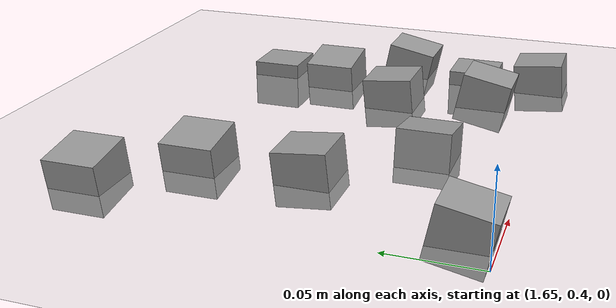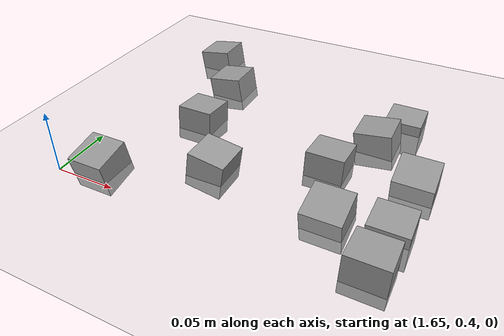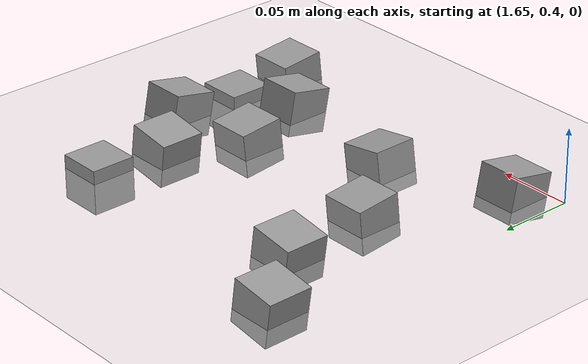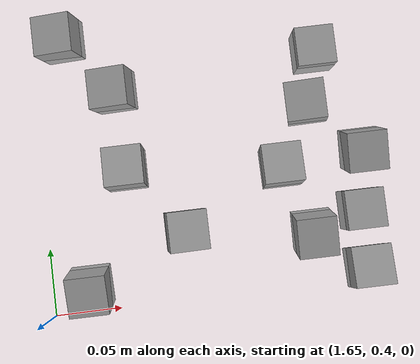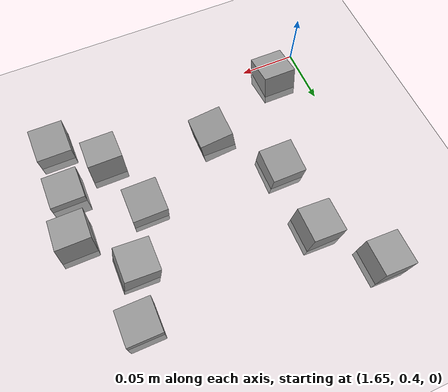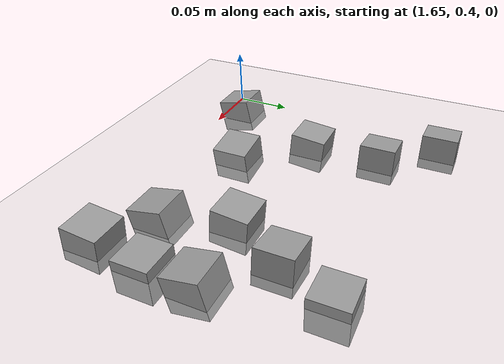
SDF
<sdf version="1.7">
 <world name="default">
  <model name="ground_plane">
   <static>1</static>
   <link name="link">
    <collision name="collision">
     <geometry><plane><normal>0 0 1</normal><size>100 100</size></plane></geometry>
     <surface><friction><ode><mu>100</mu><mu2>50</mu2></ode></friction></surface>
    </collision>
    <visual name="visual">
     <cast_shadows>0</cast_shadows>
     <geometry><plane><normal>0 0 1</normal><size>100 100</size></plane></geometry>
     <material>
      <script><uri>file://media/materials/scripts/gazebo.material</uri><name>Gazebo/Grey</name></script>
     </material>
    </visual>
   </link>
  </model>
  <model name="stone_road_0">
   <link name="link_0_clone_12">
    <inertial>
     <mass>1</mass>
     <inertia>
      <ixx>0.166667</ixx>
      <ixy>0</ixy>
      <ixz>0</ixz>
      <iyy>0.166667</iyy>
      <iyz>0</iyz>
      <izz>0.166667</izz>
     </inertia>
    </inertial>
    <pose>0.142624 -0.262715 0.003778 0.2 -0 0</pose>
    <kinematic>1</kinematic>
    <visual name="visual">
     <geometry><box><size>0.03 0.03 0.03</size></box></geometry>
     <material>
      <lighting>1</lighting>
      <script><uri>file://media/materials/scripts/gazebo.material</uri><name>Gazebo/Grey</name></script>
      <shader type="pixel"><normal_map>__default__</normal_map></shader>
      <ambient>0.3 0.3 0.3 1</ambient>
      <diffuse>0.7 0.7 0.7 1</diffuse>
      <specular>0.01 0.01 0.01 1</specular>
      <emissive>0 0 0 1</emissive>
     </material>
    </visual>
    <collision name="collision">
     <geometry><box><size>0.03 0.03 0.03</size></box></geometry>
     <surface>
      <friction>
       <ode><mu>1</mu><mu2>1</mu2><fdir1>0 0 0</fdir1><slip1>0</slip1><slip2>0</slip2></ode>
       <torsional>
        <coefficient>1</coefficient>
        <patch_radius>0</patch_radius>
        <surface_radius>0</surface_radius>
        <use_patch_radius>1</use_patch_radius>
        <ode><slip>0</slip></ode>
       </torsional>
      </friction>
      <bounce><restitution_coefficient>0</restitution_coefficient><threshold>1e+06</threshold></bounce>
      <contact>
       <collide_without_contact>0</collide_without_contact>
       <collide_without_contact_bitmask>1</collide_without_contact_bitmask>
       <collide_bitmask>1</collide_bitmask>
       <ode>
        <soft_cfm>0</soft_cfm>
        <soft_erp>0.2</soft_erp>
        <kp>1e+13</kp>
        <kd>1</kd>
        <max_vel>0.01</max_vel>
        <min_depth>0</min_depth>
       </ode>
       <bullet>
        <split_impulse>1</split_impulse>
        <split_impulse_penetration_threshold>-0.01</split_impulse_penetration_threshold>
        <soft_cfm>0</soft_cfm>
        <soft_erp>0.2</soft_erp>
        <kp>1e+13</kp>
        <kd>1</kd>
       </bullet>
      </contact>
     </surface>
    </collision>
   </link>
   <link name="link_0_clone_2_clone_2_clone_13_clone_clone_11">
    <inertial>
     <mass>1</mass>
     <inertia>
      <ixx>0.166667</ixx>
      <ixy>0</ixy>
      <ixz>0</ixz>
      <iyy>0.166667</iyy>
      <iyz>0</iyz>
      <izz>0.166667</izz>
     </inertia>
    </inertial>
    <pose>0.178889 -0.173779 0.003778 -0.1 0 0</pose>
    <kinematic>1</kinematic>
    <visual name="visual">
     <geometry><box><size>0.03 0.03 0.03</size></box></geometry>
     <material>
      <lighting>1</lighting>
      <script><uri>file://media/materials/scripts/gazebo.material</uri><name>Gazebo/Grey</name></script>
      <shader type="pixel"><normal_map>__default__</normal_map></shader>
      <ambient>0.3 0.3 0.3 1</ambient>
      <diffuse>0.7 0.7 0.7 1</diffuse>
      <specular>0.01 0.01 0.01 1</specular>
      <emissive>0 0 0 1</emissive>
     </material>
    </visual>
    <collision name="collision">
     <geometry><box><size>0.03 0.03 0.03</size></box></geometry>
     <surface>
      <friction>
       <ode><mu>1</mu><mu2>1</mu2><fdir1>0 0 0</fdir1><slip1>0</slip1><slip2>0</slip2></ode>
       <torsional>
        <coefficient>1</coefficient>
        <patch_radius>0</patch_radius>
        <surface_radius>0</surface_radius>
        <use_patch_radius>1</use_patch_radius>
        <ode><slip>0</slip></ode>
       </torsional>
      </friction>
      <bounce><restitution_coefficient>0</restitution_coefficient><threshold>1e+06</threshold></bounce>
      <contact>
       <collide_without_contact>0</collide_without_contact>
       <collide_without_contact_bitmask>1</collide_without_contact_bitmask>
       <collide_bitmask>1</collide_bitmask>
       <ode>
        <soft_cfm>0</soft_cfm>
        <soft_erp>0.2</soft_erp>
        <kp>1e+13</kp>
        <kd>1</kd>
        <max_vel>0.01</max_vel>
        <min_depth>0</min_depth>
       </ode>
       <bullet>
        <split_impulse>1</split_impulse>
        <split_impulse_penetration_threshold>-0.01</split_impulse_penetration_threshold>
        <soft_cfm>0</soft_cfm>
        <soft_erp>0.2</soft_erp>
        <kp>1e+13</kp>
        <kd>1</kd>
       </bullet>
      </contact>
     </surface>
    </collision>
   </link>
   <link name="link_0_clone_2_clone_2_clone_5">
    <inertial>
     <mass>1</mass>
     <inertia>
      <ixx>0.166667</ixx>
      <ixy>0</ixy>
      <ixz>0</ixz>
      <iyy>0.166667</iyy>
      <iyz>0</iyz>
      <izz>0.166667</izz>
     </inertia>
    </inertial>
    <pose>0.13842 -0.067468 0.003778 0 -0.15 0</pose>
    <kinematic>1</kinematic>
    <visual name="visual">
     <geometry><box><size>0.03 0.03 0.03</size></box></geometry>
     <material>
      <lighting>1</lighting>
      <script><uri>file://media/materials/scripts/gazebo.material</uri><name>Gazebo/Grey</name></script>
      <shader type="pixel"><normal_map>__default__</normal_map></shader>
      <ambient>0.3 0.3 0.3 1</ambient>
      <diffuse>0.7 0.7 0.7 1</diffuse>
      <specular>0.01 0.01 0.01 1</specular>
      <emissive>0 0 0 1</emissive>
     </material>
    </visual>
    <collision name="collision">
     <geometry><box><size>0.03 0.03 0.03</size></box></geometry>
     <surface>
      <friction>
       <ode><mu>1</mu><mu2>1</mu2><fdir1>0 0 0</fdir1><slip1>0</slip1><slip2>0</slip2></ode>
       <torsional>
        <coefficient>1</coefficient>
        <patch_radius>0</patch_radius>
        <surface_radius>0</surface_radius>
        <use_patch_radius>1</use_patch_radius>
        <ode><slip>0</slip></ode>
       </torsional>
      </friction>
      <bounce><restitution_coefficient>0</restitution_coefficient><threshold>1e+06</threshold></bounce>
      <contact>
       <collide_without_contact>0</collide_without_contact>
       <collide_without_contact_bitmask>1</collide_without_contact_bitmask>
       <collide_bitmask>1</collide_bitmask>
       <ode>
        <soft_cfm>0</soft_cfm>
        <soft_erp>0.2</soft_erp>
        <kp>1e+13</kp>
        <kd>1</kd>
        <max_vel>0.01</max_vel>
        <min_depth>0</min_depth>
       </ode>
       <bullet>
        <split_impulse>1</split_impulse>
        <split_impulse_penetration_threshold>-0.01</split_impulse_penetration_threshold>
        <soft_cfm>0</soft_cfm>
        <soft_erp>0.2</soft_erp>
        <kp>1e+13</kp>
        <kd>1</kd>
       </bullet>
      </contact>
     </surface>
    </collision>
   </link>
   <link name="link_0_clone_2_clone_2_clone_7">
    <inertial>
     <mass>1</mass>
     <inertia>
      <ixx>0.166667</ixx>
      <ixy>0</ixy>
      <ixz>0</ixz>
      <iyy>0.166667</iyy>
      <iyz>0</iyz>
      <izz>0.166667</izz>
     </inertia>
    </inertial>
    <pose>0.175499 -0.112442 0.003778 0 -0.15 0</pose>
    <kinematic>1</kinematic>
    <visual name="visual">
     <geometry><box><size>0.03 0.03 0.03</size></box></geometry>
     <material>
      <lighting>1</lighting>
      <script><uri>file://media/materials/scripts/gazebo.material</uri><name>Gazebo/Grey</name></script>
      <shader type="pixel"><normal_map>__default__</normal_map></shader>
      <ambient>0.3 0.3 0.3 1</ambient>
      <diffuse>0.7 0.7 0.7 1</diffuse>
      <specular>0.01 0.01 0.01 1</specular>
      <emissive>0 0 0 1</emissive>
     </material>
    </visual>
    <collision name="collision">
     <geometry><box><size>0.03 0.03 0.03</size></box></geometry>
     <surface>
      <friction>
       <ode><mu>1</mu><mu2>1</mu2><fdir1>0 0 0</fdir1><slip1>0</slip1><slip2>0</slip2></ode>
       <torsional>
        <coefficient>1</coefficient>
        <patch_radius>0</patch_radius>
        <surface_radius>0</surface_radius>
        <use_patch_radius>1</use_patch_radius>
        <ode><slip>0</slip></ode>
       </torsional>
      </friction>
      <bounce><restitution_coefficient>0</restitution_coefficient><threshold>1e+06</threshold></bounce>
      <contact>
       <collide_without_contact>0</collide_without_contact>
       <collide_without_contact_bitmask>1</collide_without_contact_bitmask>
       <collide_bitmask>1</collide_bitmask>
       <ode>
        <soft_cfm>0</soft_cfm>
        <soft_erp>0.2</soft_erp>
        <kp>1e+13</kp>
        <kd>1</kd>
        <max_vel>0.01</max_vel>
        <min_depth>0</min_depth>
       </ode>
       <bullet>
        <split_impulse>1</split_impulse>
        <split_impulse_penetration_threshold>-0.01</split_impulse_penetration_threshold>
        <soft_cfm>0</soft_cfm>
        <soft_erp>0.2</soft_erp>
        <kp>1e+13</kp>
        <kd>1</kd>
       </bullet>
      </contact>
     </surface>
    </collision>
   </link>
   <static>0</static>
   <pose>1.53544 0.679184 -0 0 -0 0</pose>
  </model>
  <model name="stone_road_3">
   <link name="link_0">
    <inertial>
     <mass>1</mass>
     <inertia>
      <ixx>0.166667</ixx>
      <ixy>0</ixy>
      <ixz>0</ixz>
      <iyy>0.166667</iyy>
      <iyz>0</iyz>
      <izz>0.166667</izz>
     </inertia>
    </inertial>
    <pose>-0.171827 0.03973 0.003778 0.2 -0 0</pose>
    <kinematic>1</kinematic>
    <visual name="visual">
     <geometry><box><size>0.03 0.03 0.03</size></box></geometry>
     <material>
      <lighting>1</lighting>
      <script><uri>file://media/materials/scripts/gazebo.material</uri><name>Gazebo/Grey</name></script>
      <shader type="pixel"><normal_map>__default__</normal_map></shader>
      <ambient>0.3 0.3 0.3 1</ambient>
      <diffuse>0.7 0.7 0.7 1</diffuse>
      <specular>0.01 0.01 0.01 1</specular>
      <emissive>0 0 0 1</emissive>
     </material>
    </visual>
    <collision name="collision">
     <geometry><box><size>0.03 0.03 0.03</size></box></geometry>
     <surface>
      <friction>
       <ode><mu>1</mu><mu2>1</mu2><fdir1>0 0 0</fdir1><slip1>0</slip1><slip2>0</slip2></ode>
       <torsional>
        <coefficient>1</coefficient>
        <patch_radius>0</patch_radius>
        <surface_radius>0</surface_radius>
        <use_patch_radius>1</use_patch_radius>
        <ode><slip>0</slip></ode>
       </torsional>
      </friction>
      <bounce><restitution_coefficient>0</restitution_coefficient><threshold>1e+06</threshold></bounce>
      <contact>
       <collide_without_contact>0</collide_without_contact>
       <collide_without_contact_bitmask>1</collide_without_contact_bitmask>
       <collide_bitmask>1</collide_bitmask>
       <ode>
        <soft_cfm>0</soft_cfm>
        <soft_erp>0.2</soft_erp>
        <kp>1e+13</kp>
        <kd>1</kd>
        <max_vel>0.01</max_vel>
        <min_depth>0</min_depth>
       </ode>
       <bullet>
        <split_impulse>1</split_impulse>
        <split_impulse_penetration_threshold>-0.01</split_impulse_penetration_threshold>
        <soft_cfm>0</soft_cfm>
        <soft_erp>0.2</soft_erp>
        <kp>1e+13</kp>
        <kd>1</kd>
       </bullet>
      </contact>
     </surface>
    </collision>
   </link>
   <link name="link_0_clone_2_clone_2_clone_13_clone_clone_14">
    <inertial>
     <mass>1</mass>
     <inertia>
      <ixx>0.166667</ixx>
      <ixy>0</ixy>
      <ixz>0</ixz>
      <iyy>0.166667</iyy>
      <iyz>0</iyz>
      <izz>0.166667</izz>
     </inertia>
    </inertial>
    <pose>-0.190578 0.093923 0.003778 -0.1 0 0</pose>
    <kinematic>1</kinematic>
    <visual name="visual">
     <geometry><box><size>0.03 0.03 0.03</size></box></geometry>
     <material>
      <lighting>1</lighting>
      <script><uri>file://media/materials/scripts/gazebo.material</uri><name>Gazebo/Grey</name></script>
      <shader type="pixel"><normal_map>__default__</normal_map></shader>
      <ambient>0.3 0.3 0.3 1</ambient>
      <diffuse>0.7 0.7 0.7 1</diffuse>
      <specular>0.01 0.01 0.01 1</specular>
      <emissive>0 0 0 1</emissive>
     </material>
    </visual>
    <collision name="collision">
     <geometry><box><size>0.03 0.03 0.03</size></box></geometry>
     <surface>
      <friction>
       <ode><mu>1</mu><mu2>1</mu2><fdir1>0 0 0</fdir1><slip1>0</slip1><slip2>0</slip2></ode>
       <torsional>
        <coefficient>1</coefficient>
        <patch_radius>0</patch_radius>
        <surface_radius>0</surface_radius>
        <use_patch_radius>1</use_patch_radius>
        <ode><slip>0</slip></ode>
       </torsional>
      </friction>
      <bounce><restitution_coefficient>0</restitution_coefficient><threshold>1e+06</threshold></bounce>
      <contact>
       <collide_without_contact>0</collide_without_contact>
       <collide_without_contact_bitmask>1</collide_without_contact_bitmask>
       <collide_bitmask>1</collide_bitmask>
       <ode>
        <soft_cfm>0</soft_cfm>
        <soft_erp>0.2</soft_erp>
        <kp>1e+13</kp>
        <kd>1</kd>
        <max_vel>0.01</max_vel>
        <min_depth>0</min_depth>
       </ode>
       <bullet>
        <split_impulse>1</split_impulse>
        <split_impulse_penetration_threshold>-0.01</split_impulse_penetration_threshold>
        <soft_cfm>0</soft_cfm>
        <soft_erp>0.2</soft_erp>
        <kp>1e+13</kp>
        <kd>1</kd>
       </bullet>
      </contact>
     </surface>
    </collision>
   </link>
   <link name="link_0_clone_2_clone_2_clone_13_clone_clone_16_clone_25">
    <inertial>
     <mass>1</mass>
     <inertia>
      <ixx>0.166667</ixx>
      <ixy>0</ixy>
      <ixz>0</ixz>
      <iyy>0.166667</iyy>
      <iyz>0</iyz>
      <izz>0.166667</izz>
     </inertia>
    </inertial>
    <pose>-0.15326 0.182661 -0.006222 0 -0 0</pose>
    <kinematic>1</kinematic>
    <visual name="visual">
     <geometry><box><size>0.03 0.03 0.03</size></box></geometry>
     <material>
      <lighting>1</lighting>
      <script><uri>file://media/materials/scripts/gazebo.material</uri><name>Gazebo/Grey</name></script>
      <shader type="pixel"><normal_map>__default__</normal_map></shader>
      <ambient>0.3 0.3 0.3 1</ambient>
      <diffuse>0.7 0.7 0.7 1</diffuse>
      <specular>0.01 0.01 0.01 1</specular>
      <emissive>0 0 0 1</emissive>
     </material>
    </visual>
    <collision name="collision">
     <geometry><box><size>0.03 0.03 0.03</size></box></geometry>
     <surface>
      <friction>
       <ode><mu>1</mu><mu2>1</mu2><fdir1>0 0 0</fdir1><slip1>0</slip1><slip2>0</slip2></ode>
       <torsional>
        <coefficient>1</coefficient>
        <patch_radius>0</patch_radius>
        <surface_radius>0</surface_radius>
        <use_patch_radius>1</use_patch_radius>
        <ode><slip>0</slip></ode>
       </torsional>
      </friction>
      <bounce><restitution_coefficient>0</restitution_coefficient><threshold>1e+06</threshold></bounce>
      <contact>
       <collide_without_contact>0</collide_without_contact>
       <collide_without_contact_bitmask>1</collide_without_contact_bitmask>
       <collide_bitmask>1</collide_bitmask>
       <ode>
        <soft_cfm>0</soft_cfm>
        <soft_erp>0.2</soft_erp>
        <kp>1e+13</kp>
        <kd>1</kd>
        <max_vel>0.01</max_vel>
        <min_depth>0</min_depth>
       </ode>
       <bullet>
        <split_impulse>1</split_impulse>
        <split_impulse_penetration_threshold>-0.01</split_impulse_penetration_threshold>
        <soft_cfm>0</soft_cfm>
        <soft_erp>0.2</soft_erp>
        <kp>1e+13</kp>
        <kd>1</kd>
       </bullet>
      </contact>
     </surface>
    </collision>
   </link>
   <link name="link_0_clone_2_clone_2_clone_13_clone_clone_16_clone_4">
    <inertial>
     <mass>1</mass>
     <inertia>
      <ixx>0.166667</ixx>
      <ixy>0</ixy>
      <ixz>0</ixz>
      <iyy>0.166667</iyy>
      <iyz>0</iyz>
      <izz>0.166667</izz>
     </inertia>
    </inertial>
    <pose>-0.131411 0.053677 -0.006222 0 -0 0</pose>
    <kinematic>1</kinematic>
    <visual name="visual">
     <geometry><box><size>0.03 0.03 0.03</size></box></geometry>
     <material>
      <lighting>1</lighting>
      <script><uri>file://media/materials/scripts/gazebo.material</uri><name>Gazebo/Grey</name></script>
      <shader type="pixel"><normal_map>__default__</normal_map></shader>
      <ambient>0.3 0.3 0.3 1</ambient>
      <diffuse>0.7 0.7 0.7 1</diffuse>
      <specular>0.01 0.01 0.01 1</specular>
      <emissive>0 0 0 1</emissive>
     </material>
    </visual>
    <collision name="collision">
     <geometry><box><size>0.03 0.03 0.03</size></box></geometry>
     <surface>
      <friction>
       <ode><mu>1</mu><mu2>1</mu2><fdir1>0 0 0</fdir1><slip1>0</slip1><slip2>0</slip2></ode>
       <torsional>
        <coefficient>1</coefficient>
        <patch_radius>0</patch_radius>
        <surface_radius>0</surface_radius>
        <use_patch_radius>1</use_patch_radius>
        <ode><slip>0</slip></ode>
       </torsional>
      </friction>
      <bounce><restitution_coefficient>0</restitution_coefficient><threshold>1e+06</threshold></bounce>
      <contact>
       <collide_without_contact>0</collide_without_contact>
       <collide_without_contact_bitmask>1</collide_without_contact_bitmask>
       <collide_bitmask>1</collide_bitmask>
       <ode>
        <soft_cfm>0</soft_cfm>
        <soft_erp>0.2</soft_erp>
        <kp>1e+13</kp>
        <kd>1</kd>
        <max_vel>0.01</max_vel>
        <min_depth>0</min_depth>
       </ode>
       <bullet>
        <split_impulse>1</split_impulse>
        <split_impulse_penetration_threshold>-0.01</split_impulse_penetration_threshold>
        <soft_cfm>0</soft_cfm>
        <soft_erp>0.2</soft_erp>
        <kp>1e+13</kp>
        <kd>1</kd>
       </bullet>
      </contact>
     </surface>
    </collision>
   </link>
   <link name="link_0_clone_2_clone_2_clone_13_clone_clone_7">
    <inertial>
     <mass>1</mass>
     <inertia>
      <ixx>0.166667</ixx>
      <ixy>0</ixy>
      <ixz>0</ixz>
      <iyy>0.166667</iyy>
      <iyz>0</iyz>
      <izz>0.166667</izz>
     </inertia>
    </inertial>
    <pose>-0.133876 0.010561 0.003778 -0.1 0 0</pose>
    <kinematic>1</kinematic>
    <visual name="visual">
     <geometry><box><size>0.03 0.03 0.03</size></box></geometry>
     <material>
      <lighting>1</lighting>
      <script><uri>file://media/materials/scripts/gazebo.material</uri><name>Gazebo/Grey</name></script>
      <shader type="pixel"><normal_map>__default__</normal_map></shader>
      <ambient>0.3 0.3 0.3 1</ambient>
      <diffuse>0.7 0.7 0.7 1</diffuse>
      <specular>0.01 0.01 0.01 1</specular>
      <emissive>0 0 0 1</emissive>
     </material>
    </visual>
    <collision name="collision">
     <geometry><box><size>0.03 0.03 0.03</size></box></geometry>
     <surface>
      <friction>
       <ode><mu>1</mu><mu2>1</mu2><fdir1>0 0 0</fdir1><slip1>0</slip1><slip2>0</slip2></ode>
       <torsional>
        <coefficient>1</coefficient>
        <patch_radius>0</patch_radius>
        <surface_radius>0</surface_radius>
        <use_patch_radius>1</use_patch_radius>
        <ode><slip>0</slip></ode>
       </torsional>
      </friction>
      <bounce><restitution_coefficient>0</restitution_coefficient><threshold>1e+06</threshold></bounce>
      <contact>
       <collide_without_contact>0</collide_without_contact>
       <collide_without_contact_bitmask>1</collide_without_contact_bitmask>
       <collide_bitmask>1</collide_bitmask>
       <ode>
        <soft_cfm>0</soft_cfm>
        <soft_erp>0.2</soft_erp>
        <kp>1e+13</kp>
        <kd>1</kd>
        <max_vel>0.01</max_vel>
        <min_depth>0</min_depth>
       </ode>
       <bullet>
        <split_impulse>1</split_impulse>
        <split_impulse_penetration_threshold>-0.01</split_impulse_penetration_threshold>
        <soft_cfm>0</soft_cfm>
        <soft_erp>0.2</soft_erp>
        <kp>1e+13</kp>
        <kd>1</kd>
       </bullet>
      </contact>
     </surface>
    </collision>
   </link>
   <link name="link_0_clone_2_clone_2_clone_2">
    <inertial>
     <mass>1</mass>
     <inertia>
      <ixx>0.166667</ixx>
      <ixy>0</ixy>
      <ixz>0</ixz>
      <iyy>0.166667</iyy>
      <iyz>0</iyz>
      <izz>0.166667</izz>
     </inertia>
    </inertial>
    <pose>-0.166079 0.139989 0.003778 0 -0.15 0</pose>
    <kinematic>1</kinematic>
    <visual name="visual">
     <geometry><box><size>0.03 0.03 0.03</size></box></geometry>
     <material>
      <lighting>1</lighting>
      <script><uri>file://media/materials/scripts/gazebo.material</uri><name>Gazebo/Grey</name></script>
      <shader type="pixel"><normal_map>__default__</normal_map></shader>
      <ambient>0.3 0.3 0.3 1</ambient>
      <diffuse>0.7 0.7 0.7 1</diffuse>
      <specular>0.01 0.01 0.01 1</specular>
      <emissive>0 0 0 1</emissive>
     </material>
    </visual>
    <collision name="collision">
     <geometry><box><size>0.03 0.03 0.03</size></box></geometry>
     <surface>
      <friction>
       <ode><mu>1</mu><mu2>1</mu2><fdir1>0 0 0</fdir1><slip1>0</slip1><slip2>0</slip2></ode>
       <torsional>
        <coefficient>1</coefficient>
        <patch_radius>0</patch_radius>
        <surface_radius>0</surface_radius>
        <use_patch_radius>1</use_patch_radius>
        <ode><slip>0</slip></ode>
       </torsional>
      </friction>
      <bounce><restitution_coefficient>0</restitution_coefficient><threshold>1e+06</threshold></bounce>
      <contact>
       <collide_without_contact>0</collide_without_contact>
       <collide_without_contact_bitmask>1</collide_without_contact_bitmask>
       <collide_bitmask>1</collide_bitmask>
       <ode>
        <soft_cfm>0</soft_cfm>
        <soft_erp>0.2</soft_erp>
        <kp>1e+13</kp>
        <kd>1</kd>
        <max_vel>0.01</max_vel>
        <min_depth>0</min_depth>
       </ode>
       <bullet>
        <split_impulse>1</split_impulse>
        <split_impulse_penetration_threshold>-0.01</split_impulse_penetration_threshold>
        <soft_cfm>0</soft_cfm>
        <soft_erp>0.2</soft_erp>
        <kp>1e+13</kp>
        <kd>1</kd>
       </bullet>
      </contact>
     </surface>
    </collision>
   </link>
   <link name="link_0_clone_2_clone_5">
    <inertial>
     <mass>1</mass>
     <inertia>
      <ixx>0.166667</ixx>
      <ixy>0</ixy>
      <ixz>0</ixz>
      <iyy>0.166667</iyy>
      <iyz>0</iyz>
      <izz>0.166667</izz>
     </inertia>
    </inertial>
    <pose>-0.268485 0.053169 0.003778 0 0.15 0</pose>
    <kinematic>1</kinematic>
    <visual name="visual">
     <geometry><box><size>0.03 0.03 0.03</size></box></geometry>
     <material>
      <lighting>1</lighting>
      <script><uri>file://media/materials/scripts/gazebo.material</uri><name>Gazebo/Grey</name></script>
      <shader type="pixel"><normal_map>__default__</normal_map></shader>
      <ambient>0.3 0.3 0.3 1</ambient>
      <diffuse>0.7 0.7 0.7 1</diffuse>
      <specular>0.01 0.01 0.01 1</specular>
      <emissive>0 0 0 1</emissive>
     </material>
    </visual>
    <collision name="collision">
     <geometry><box><size>0.03 0.03 0.03</size></box></geometry>
     <surface>
      <friction>
       <ode><mu>1</mu><mu2>1</mu2><fdir1>0 0 0</fdir1><slip1>0</slip1><slip2>0</slip2></ode>
       <torsional>
        <coefficient>1</coefficient>
        <patch_radius>0</patch_radius>
        <surface_radius>0</surface_radius>
        <use_patch_radius>1</use_patch_radius>
        <ode><slip>0</slip></ode>
       </torsional>
      </friction>
      <bounce><restitution_coefficient>0</restitution_coefficient><threshold>1e+06</threshold></bounce>
      <contact>
       <collide_without_contact>0</collide_without_contact>
       <collide_without_contact_bitmask>1</collide_without_contact_bitmask>
       <collide_bitmask>1</collide_bitmask>
       <ode>
        <soft_cfm>0</soft_cfm>
        <soft_erp>0.2</soft_erp>
        <kp>1e+13</kp>
        <kd>1</kd>
        <max_vel>0.01</max_vel>
        <min_depth>0</min_depth>
       </ode>
       <bullet>
        <split_impulse>1</split_impulse>
        <split_impulse_penetration_threshold>-0.01</split_impulse_penetration_threshold>
        <soft_cfm>0</soft_cfm>
        <soft_erp>0.2</soft_erp>
        <kp>1e+13</kp>
        <kd>1</kd>
       </bullet>
      </contact>
     </surface>
    </collision>
   </link>
   <link name="link_0_clone_3">
    <inertial>
     <mass>1</mass>
     <inertia>
      <ixx>0.166667</ixx>
      <ixy>0</ixy>
      <ixz>0</ixz>
      <iyy>0.166667</iyy>
      <iyz>0</iyz>
      <izz>0.166667</izz>
     </inertia>
    </inertial>
    <pose>-0.126666 0.098861 0.003778 0.2 -0 0</pose>
    <kinematic>1</kinematic>
    <visual name="visual">
     <geometry><box><size>0.03 0.03 0.03</size></box></geometry>
     <material>
      <lighting>1</lighting>
      <script><uri>file://media/materials/scripts/gazebo.material</uri><name>Gazebo/Grey</name></script>
      <shader type="pixel"><normal_map>__default__</normal_map></shader>
      <ambient>0.3 0.3 0.3 1</ambient>
      <diffuse>0.7 0.7 0.7 1</diffuse>
      <specular>0.01 0.01 0.01 1</specular>
      <emissive>0 0 0 1</emissive>
     </material>
    </visual>
    <collision name="collision">
     <geometry><box><size>0.03 0.03 0.03</size></box></geometry>
     <surface>
      <friction>
       <ode><mu>1</mu><mu2>1</mu2><fdir1>0 0 0</fdir1><slip1>0</slip1><slip2>0</slip2></ode>
       <torsional>
        <coefficient>1</coefficient>
        <patch_radius>0</patch_radius>
        <surface_radius>0</surface_radius>
        <use_patch_radius>1</use_patch_radius>
        <ode><slip>0</slip></ode>
       </torsional>
      </friction>
      <bounce><restitution_coefficient>0</restitution_coefficient><threshold>1e+06</threshold></bounce>
      <contact>
       <collide_without_contact>0</collide_without_contact>
       <collide_without_contact_bitmask>1</collide_without_contact_bitmask>
       <collide_bitmask>1</collide_bitmask>
       <ode>
        <soft_cfm>0</soft_cfm>
        <soft_erp>0.2</soft_erp>
        <kp>1e+13</kp>
        <kd>1</kd>
        <max_vel>0.01</max_vel>
        <min_depth>0</min_depth>
       </ode>
       <bullet>
        <split_impulse>1</split_impulse>
        <split_impulse_penetration_threshold>-0.01</split_impulse_penetration_threshold>
        <soft_cfm>0</soft_cfm>
        <soft_erp>0.2</soft_erp>
        <kp>1e+13</kp>
        <kd>1</kd>
       </bullet>
      </contact>
     </surface>
    </collision>
   </link>
   <static>0</static>
   <pose>2.02404 0.399702 -0 0 -0 0</pose>
  </model>
 </world>
</sdf>
